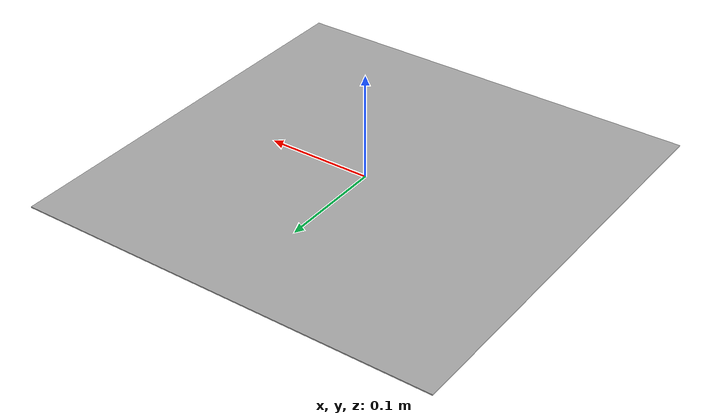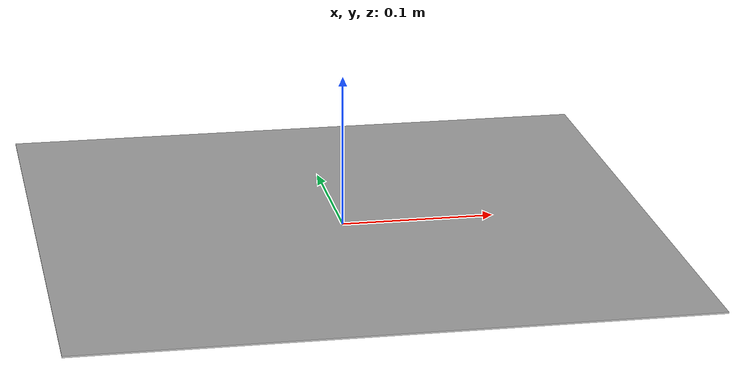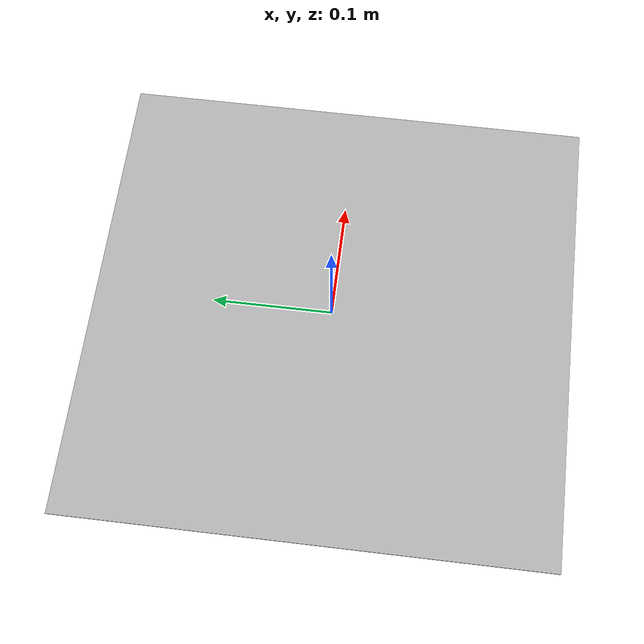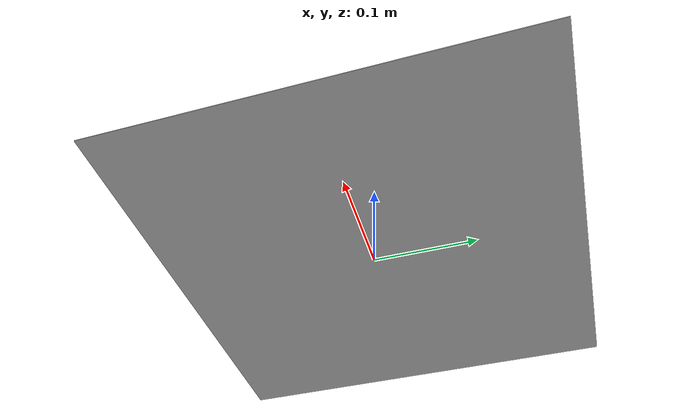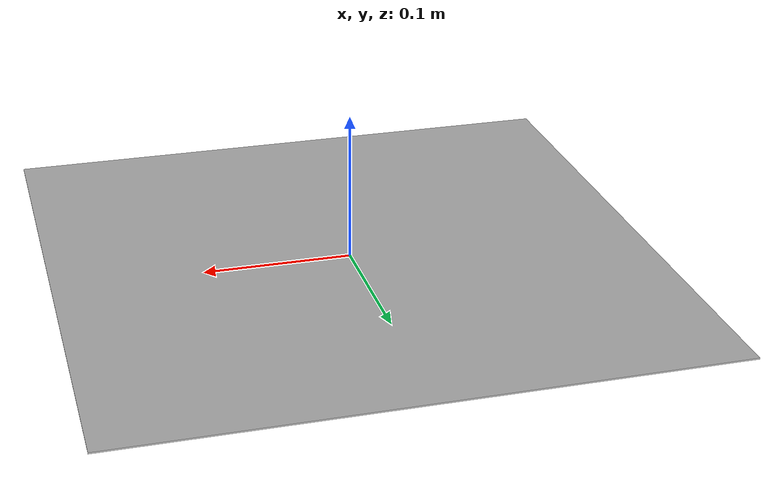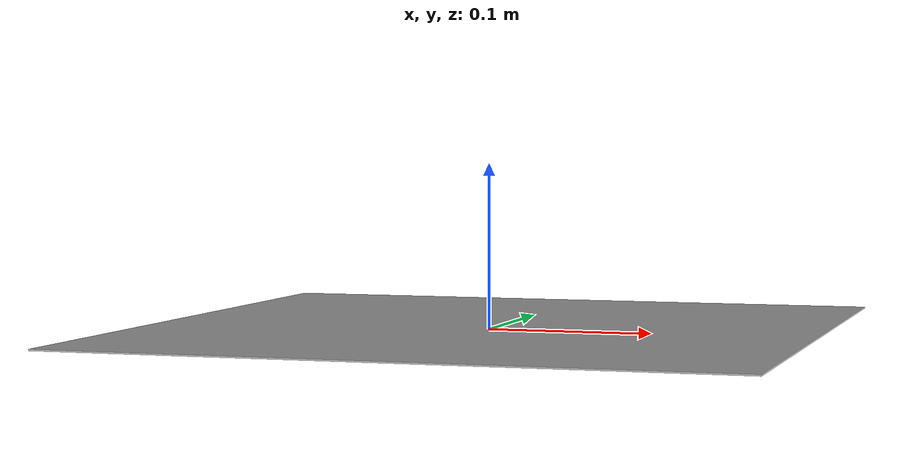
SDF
<?xml version="1.0" ?>
<sdf version="1.7">
  <model name="landing_tag">
    <static>true</static>

    <link name="link">
      <!-- slightly above z=0 to avoid z-fighting -->
      <pose>0 0 0.001 0 0 0</pose>

      <visual name="tag_visual">
        <pose>0 0 0.0005 0 0 0</pose>
        <geometry>
          <!-- Thin box is more reliable than plane for texturing -->
          <box>
            <size>0.4 0.4 0.001</size>
          </box>
        </geometry>

        <cast_shadows>false</cast_shadows>

        <material>
          <pbr>
            <metal>
              <albedo_map>model://landing_tag/materials/textures/tag36_11_00000_2048.png</albedo_map>

              <!-- Make it visible even if lighting/PBR is weird -->
              <emissive>1 1 1</emissive>
              <emissive_map>model://landing_tag/materials/textures/tag36_11_00000_2048.png</emissive_map>

              <roughness>1.0</roughness>
              <metalness>0.0</metalness>
            </metal>
          </pbr>
        </material>
      </visual>

      <collision name="collision">
        <geometry>
          <plane>
            <normal>0 0 1</normal>
            <size>0.4 0.4</size>
          </plane>
        </geometry>
      </collision>
    </link>
  </model>
</sdf>
